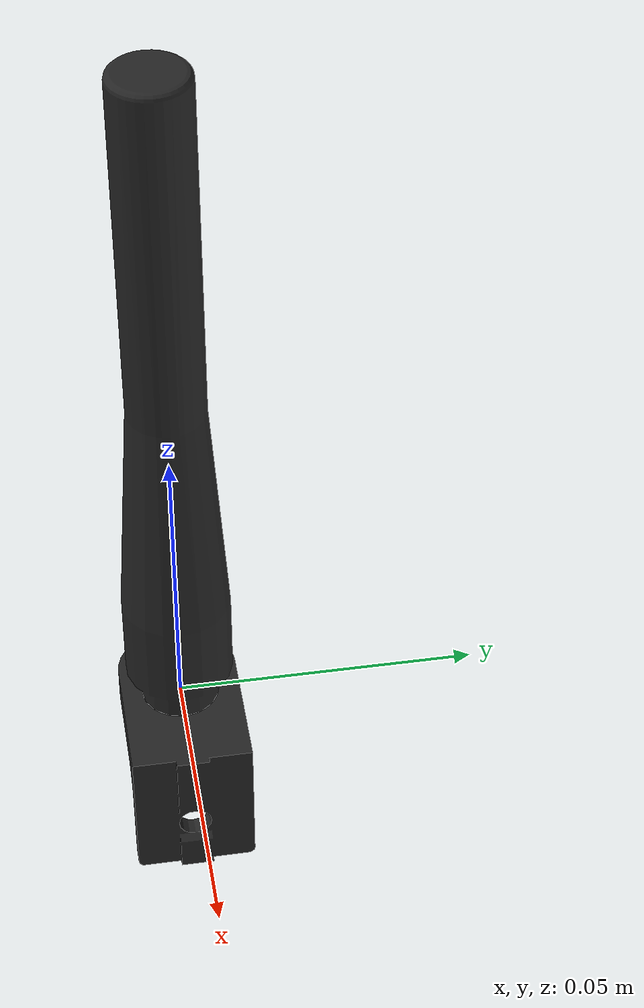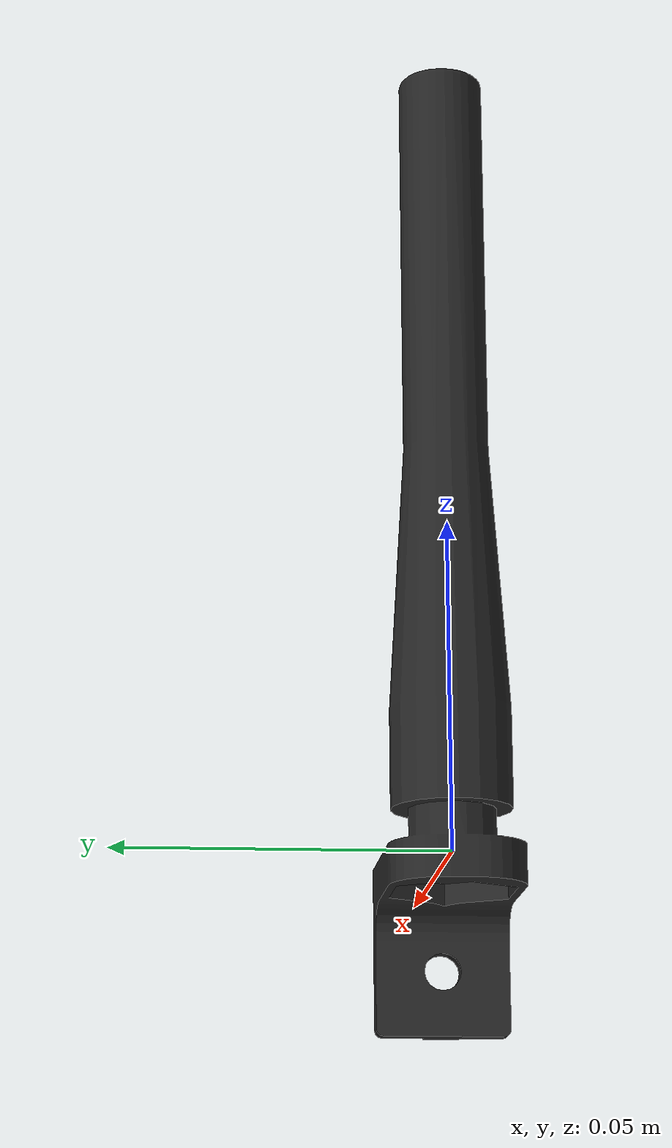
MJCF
<mujoco model="autec_antenna">
  <default>
    <default class="visual">
      <geom group="2" type="mesh" contype="0" conaffinity="0"/>
    </default>
    <default class="collision">
      <geom group="3" type="mesh"/>
    </default>
  </default>
  <asset>
    <material name="mtl_autec_antenna" specular="0.20000000000000004" shininess="1.0" rgba="0.14901961 0.14901961 0.14901961 1.0"/>
    <mesh file="autec_antenna.obj"/>
  </asset>
  <worldbody>
    <body name="autec_antenna">
      <geom material="mtl_autec_antenna" mesh="autec_antenna" class="visual"/>
      <geom mesh="autec_antenna" class="collision"/>
    </body>
  </worldbody>
</mujoco>
